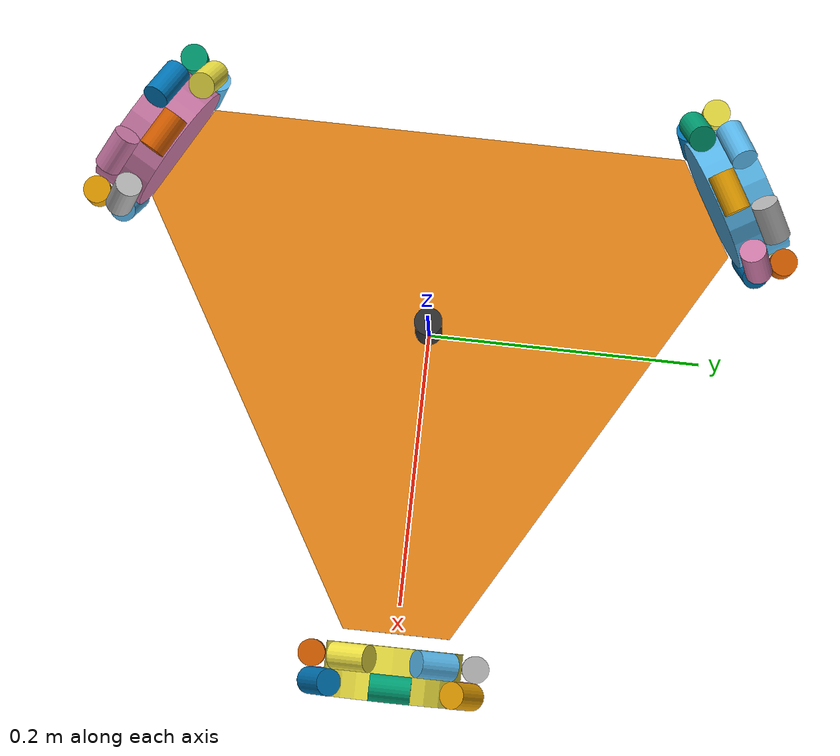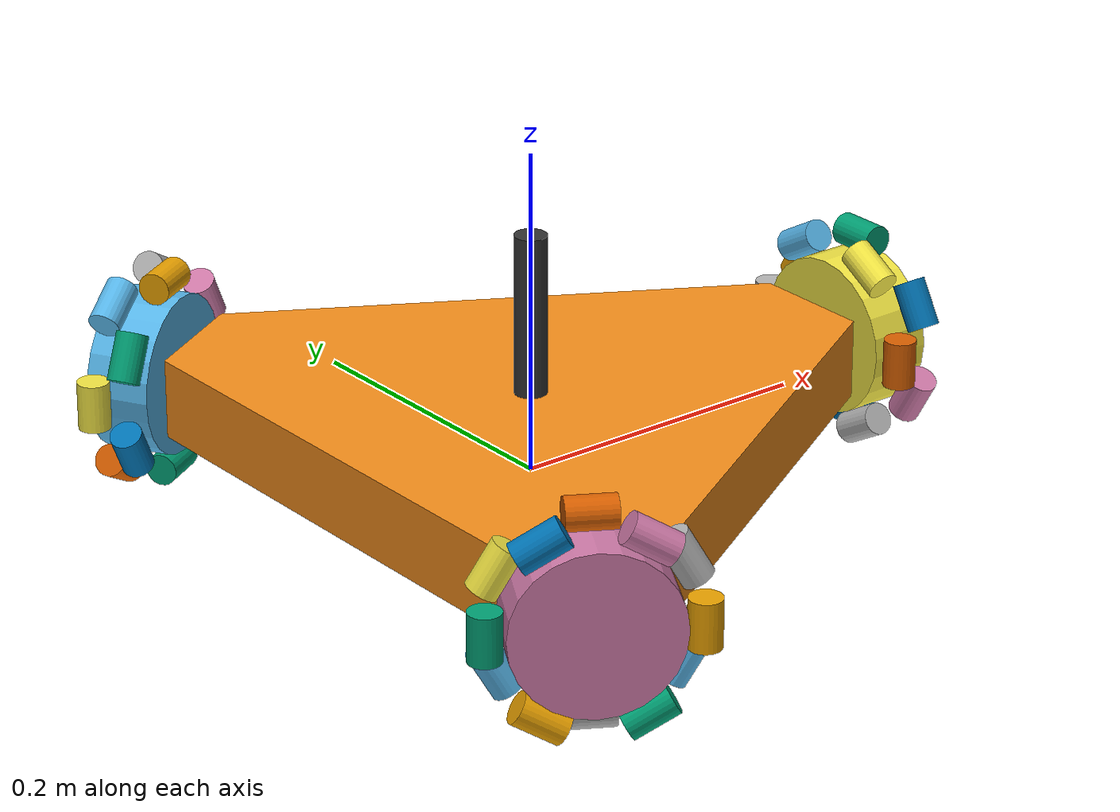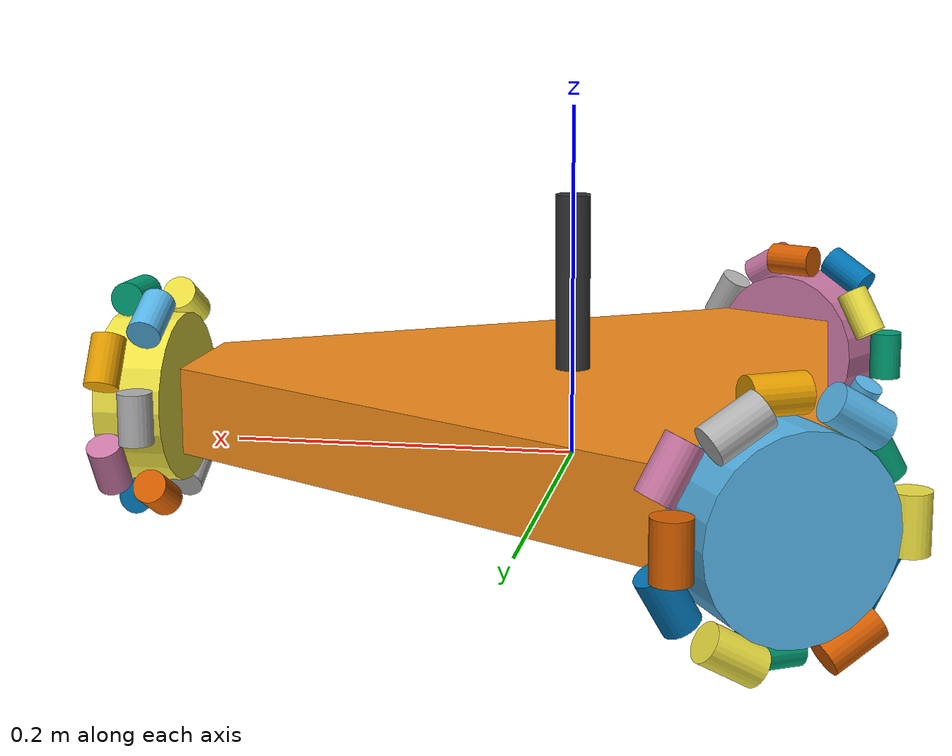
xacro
<?xml version='1.0'?>
<robot name="omni_bot" xmlns:xacro="http://www.ros.org/wiki/xacro">
  <xacro:include filename="$(find omni_bot)/urdf/rim.xacro"/>
  <xacro:include filename="$(find omni_bot)/urdf/plugins.gazebo"/>
  <link name="base_link">
    <inertial>
      <origin xyz="0 0 0" rpy="1.57 0 0"/>
      <mass value="0.10"/>
      <inertia ixx="0.00092" ixy="0.0" ixz="0.0" iyy="0.00178" iyz="0.0" izz="0.00092"/>
    </inertial>
    <visual>
      <origin xyz="0 0 0" rpy="1.57 0 0"/>
      <geometry>
        <mesh filename="package://omni_bot/meshes/chassis.STL"/>
      </geometry>
    </visual>
    <collision>
      <origin xyz="0 0 0" rpy="1.57 0 0"/>
      <geometry>
        <mesh filename="package://omni_bot/meshes/chassis.STL"/>
      </geometry>
    </collision>
  </link>
  <xacro:rim name="left" parent="base_link" xyz="-0.1256 0.213875 0.025" rpy="1.57 1.57 0.5233" GAZEBO_color = "Gazebo/Red"/>
  <xacro:rim name="right" parent="base_link" xyz="-0.1256 -0.213875 0.025" rpy="1.57 1.57 2.6167" GAZEBO_color = "Gazebo/Blue"/>
  <xacro:rim name="front" parent="base_link" xyz="0.251 0 0.025" rpy="1.57 1.57 1.57" GAZEBO_color = "Gazebo/Green"/>

<!-- Laser -->
  <link name = "laser">
    <visual>
      <origin xyz="0 0 0.0" rpy="0 0 0" />
      <geometry>
          <cylinder length="0.1" radius="0.01" />
      </geometry>
      <material name="darkgray">
        <color rgba=".2 .2 .2 1"/>
      </material>
    </visual>
  </link>
  <joint name="laser_joint" type="fixed">
    <parent link = "base_link"/>
    <child link = "laser"/>
    <origin xyz="0 0 0.1" rpy="0 0 0"/>
  </joint>

</robot>

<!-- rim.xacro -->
<robot xmlns:xacro="http://www.ros.org/wiki/xacro">
<xacro:include filename="$(find omni_bot)/urdf/roller.xacro"/>
<xacro:macro name="rim" params="name parent xyz rpy GAZEBO_color">
  <link name="rim_${name}_link">
    <inertial>
      <mass value="0.10"/>
      <inertia ixx="7.6e-5" ixy="0.0" ixz="0.0" iyy="7.6e-5" iyz="0.0" izz="0.000125"/>
    </inertial>
    <visual>
      <geometry>
        <cylinder radius="0.05" length="0.04"/>
      </geometry>
    </visual>
    <collision>
      <geometry>
        <cylinder radius="0.05" length="0.04"/>
      </geometry>
    </collision>
  </link>
  <joint name="${parent}_rim_${name}_joint" type="continuous">
    <parent link="${parent}"/>
    <child link="rim_${name}_link"/>
    <axis xyz = "0 0 1"/>
    <origin
    xyz = "${xyz}"
    rpy = "${rpy}"
    />
    <limit effort="1000" velocity="3140"/>
  </joint>
 <xacro:roller name="6" parent="${name}"  xyz="0.06 0 0.01" rpy="1.57 0 0"/>
  <xacro:roller name="5" parent="${name}"  xyz="0.05196 0.03 -0.01" rpy="1.57 0 0.5233"/>
  <xacro:roller name="4" parent="${name}"  xyz="0.03 0.05196 0.01" rpy="1.57 0 1.0466"/>
  <xacro:roller name="3" parent="${name}"  xyz="0.0 0.06 -0.01" rpy="1.57 0 1.5699"/>
  <xacro:roller name="2" parent="${name}"  xyz="-0.03 0.05196 0.01" rpy="1.57 0 2.0932"/>
  <xacro:roller name="1" parent="${name}"  xyz="-0.05196 0.03 -0.01" rpy="1.57 0 2.6165"/>
  <xacro:roller name="12" parent="${name}" xyz="-0.06 0.00 0.01" rpy="1.57 0 3.1398"/>
  <xacro:roller name="11" parent="${name}" xyz="-0.05196 -0.03 -0.01" rpy="1.57 0 -2.6165"/>
  <xacro:roller name="10" parent="${name}" xyz="-0.03 -0.05196 0.01" rpy="1.57 0 -2.0932"/>
  <xacro:roller name="9" parent="${name}"  xyz="0.0 -0.06 -0.01" rpy="1.57 0 -1.5699"/>
  <xacro:roller name="8" parent="${name}"  xyz="0.03 -0.05196 0.01" rpy="1.57 0 -1.0466"/>
  <xacro:roller name="7" parent="${name}"  xyz="0.05196 -0.03 -0.01" rpy="1.57 0 -0.5233"/>

  <transmission name="${name}_wheel_tran">
    <type>transmission_interface/SimpleTransmission</type>
    <joint name="${parent}_rim_${name}_joint">
      <hardwareInterface>hardware_interface/EffortJointInterface</hardwareInterface>
    </joint>
    <actuator name="${name}_wheel_motor">
      <hardwareInterface>hardware_interface/EffortJointInterface</hardwareInterface>
      <mechanicalReduction>1</mechanicalReduction>
    </actuator>
  </transmission>

  <gazebo reference="rim_${name}_link">
    <material value= "${GAZEBO_color}"/>
  </gazebo>

</xacro:macro>
</robot>

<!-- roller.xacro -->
<robot xmlns:xacro="http://www.ros.org/wiki/xacro">
<xacro:macro name="roller" params="name parent xyz rpy">
  <link name="roller_${name}_rim_${parent}_link">
    <inertial>
      <inertia ixx="1e-6" ixy="0.0" ixz="0.0" iyy="1e-6" iyz="0.0" izz="1e-7"/>
      <mass value="0.010"/>
    </inertial>
    <visual>
      <geometry>
        <cylinder radius="0.01" length="0.03"/>
      </geometry>
    </visual>
    <collision>
      <geometry>
        <cylinder radius="0.01" length="0.03"/>
      </geometry>
    </collision>
  </link>
  <joint name="roller_${name}_rim_${parent}_joint" type="continuous">
    <parent link="rim_${parent}_link"/>
    <child link="roller_${name}_rim_${parent}_link"/>
    <axis xyz="0 0 1"/>
    <origin xyz="${xyz}" rpy="${rpy}"/>
    <limit effort="1000" velocity="31.4"/>
  </joint>
</xacro:macro>
</robot>
